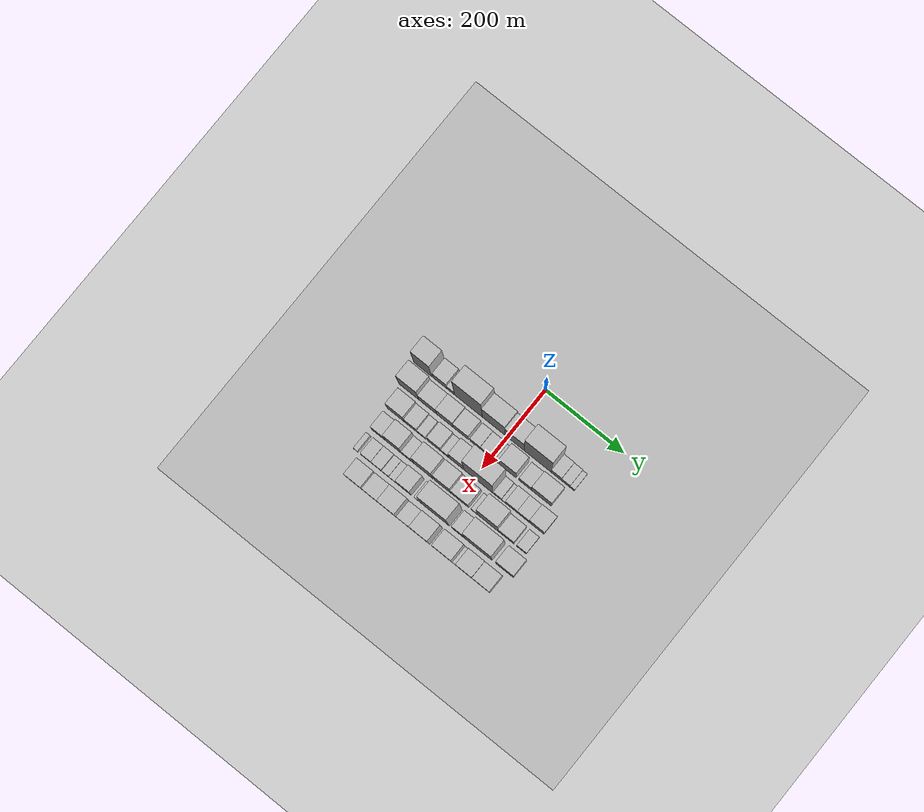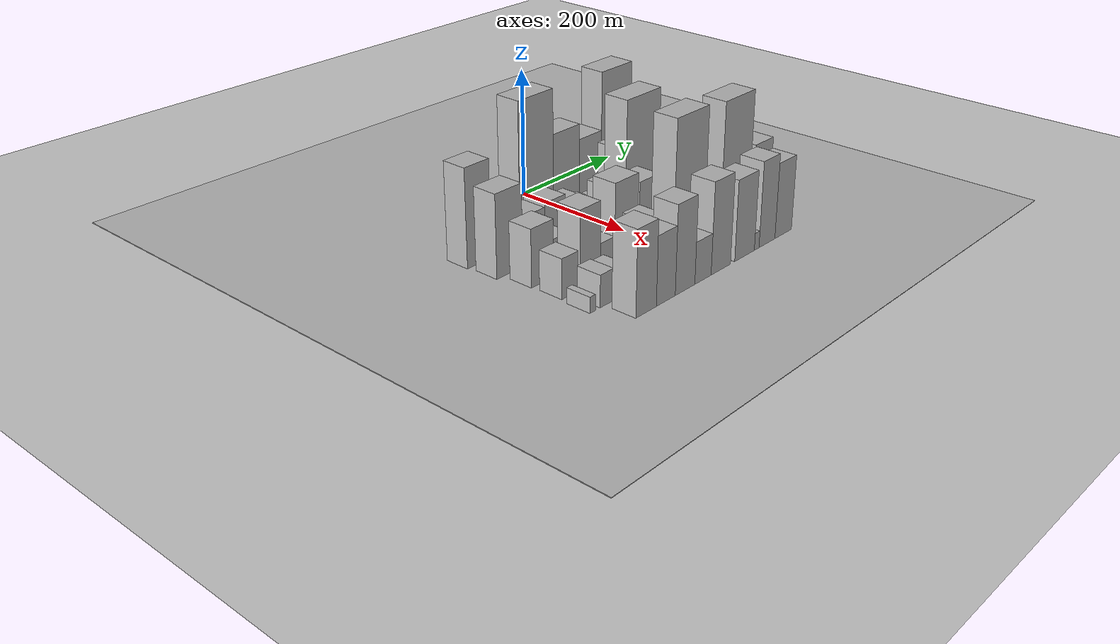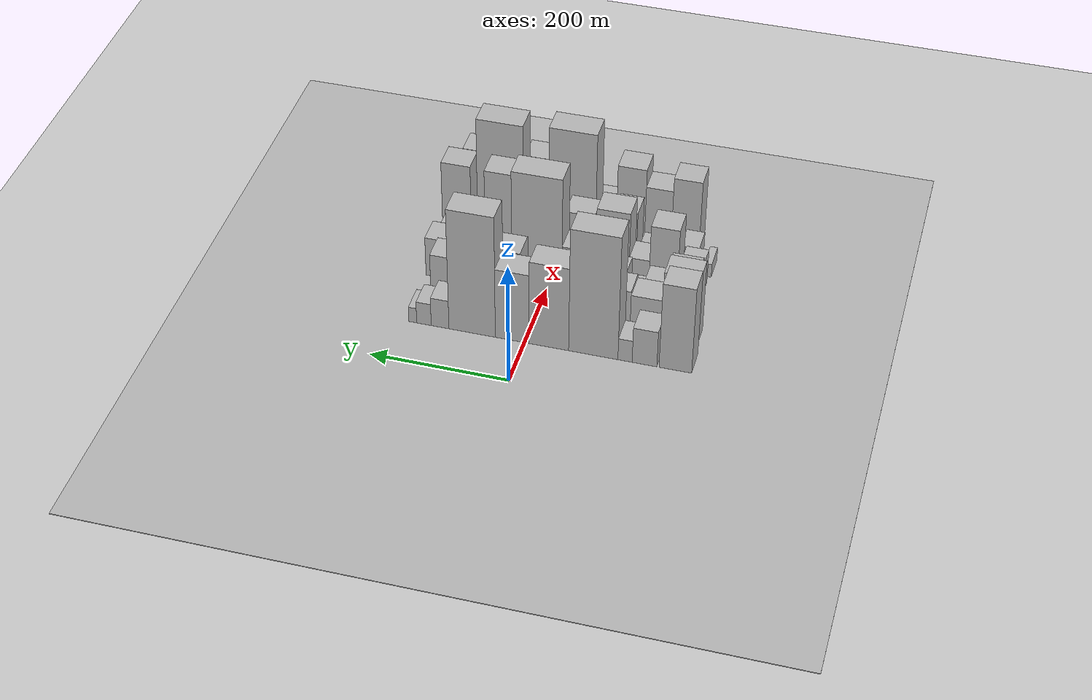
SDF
<sdf version="1.6">
 <world name="default">
  <include><name>ground_plane_1</name><uri>model://HANNAS_ground_plane</uri></include>
  <include>
   <name>ground_plane_2</name>
   <uri>model://HANNAS_ground_plane</uri>
   <pose>100 0 0  0 0 0</pose>
  </include>
  <model name="building_23">
   <static>1</static>
   <pose>100.0000 -214.9314 0 0.000000 0.000000 0.000000</pose>
   <link name="link">
    <pose>0 0 75.00 0 0 0</pose>
    <collision name="collision"><geometry><box><size>40.0000 45.9389 150.0000</size></box></geometry></collision>
    <visual name="visual">
     <cast_shadows>0</cast_shadows>
     <geometry><box><size>40.0000 45.9389 150.0000</size></box></geometry>
     <material>
      <script>
       <uri>model://HANNAS_wall/materials/scripts</uri>
       <uri>model://HANNAS_wall/materials/textures</uri>
       <name>vrc/HANNAS_wall</name>
      </script>
     </material>
    </visual>
   </link>
  </model>
  <model name="building_24">
   <static>1</static>
   <pose>100.0000 -171.4697 0 0.000000 0.000000 0.000000</pose>
   <link name="link">
    <pose>0 0 31.50 0 0 0</pose>
    <collision name="collision"><geometry><box><size>40.0000 34.9845 63.0000</size></box></geometry></collision>
    <visual name="visual">
     <cast_shadows>0</cast_shadows>
     <geometry><box><size>40.0000 34.9845 63.0000</size></box></geometry>
     <material>
      <script>
       <uri>model://HANNAS_wall/materials/scripts</uri>
       <uri>model://HANNAS_wall/materials/textures</uri>
       <name>vrc/HANNAS_wall</name>
      </script>
     </material>
    </visual>
   </link>
  </model>
  <model name="building_25">
   <static>1</static>
   <pose>100.0000 -143.8720 0 0.000000 0.000000 0.000000</pose>
   <link name="link">
    <pose>0 0 19.50 0 0 0</pose>
    <collision name="collision"><geometry><box><size>40.0000 20.2109 39.0000</size></box></geometry></collision>
    <visual name="visual">
     <cast_shadows>0</cast_shadows>
     <geometry><box><size>40.0000 20.2109 39.0000</size></box></geometry>
     <material>
      <script>
       <uri>model://HANNAS_wall/materials/scripts</uri>
       <uri>model://HANNAS_wall/materials/textures</uri>
       <name>vrc/HANNAS_wall</name>
      </script>
     </material>
    </visual>
   </link>
  </model>
  <model name="building_26">
   <static>1</static>
   <pose>100.0000 -98.5625 0 0.000000 0.000000 0.000000</pose>
   <link name="link">
    <pose>0 0 108.00 0 0 0</pose>
    <collision name="collision"><geometry><box><size>40.0000 70.4080 216.0000</size></box></geometry></collision>
    <visual name="visual">
     <cast_shadows>0</cast_shadows>
     <geometry><box><size>40.0000 70.4080 216.0000</size></box></geometry>
     <material>
      <script>
       <uri>model://HANNAS_wall/materials/scripts</uri>
       <uri>model://HANNAS_wall/materials/textures</uri>
       <name>vrc/HANNAS_wall</name>
      </script>
     </material>
    </visual>
   </link>
  </model>
  <model name="building_27">
   <static>1</static>
   <pose>100.0000 -34.9724 0 0.000000 0.000000 0.000000</pose>
   <link name="link">
    <pose>0 0 73.50 0 0 0</pose>
    <collision name="collision"><geometry><box><size>40.0000 56.7723 147.0000</size></box></geometry></collision>
    <visual name="visual">
     <cast_shadows>0</cast_shadows>
     <geometry><box><size>40.0000 56.7723 147.0000</size></box></geometry>
     <material>
      <script>
       <uri>model://HANNAS_wall/materials/scripts</uri>
       <uri>model://HANNAS_wall/materials/textures</uri>
       <name>vrc/HANNAS_wall</name>
      </script>
     </material>
    </visual>
   </link>
  </model>
  <model name="building_28">
   <static>1</static>
   <pose>100.0000 17.8575 0 0.000000 0.000000 0.000000</pose>
   <link name="link">
    <pose>0 0 61.50 0 0 0</pose>
    <collision name="collision"><geometry><box><size>40.0000 48.8873 123.0000</size></box></geometry></collision>
    <visual name="visual">
     <cast_shadows>0</cast_shadows>
     <geometry><box><size>40.0000 48.8873 123.0000</size></box></geometry>
     <material>
      <script>
       <uri>model://HANNAS_wall/materials/scripts</uri>
       <uri>model://HANNAS_wall/materials/textures</uri>
       <name>vrc/HANNAS_wall</name>
      </script>
     </material>
    </visual>
   </link>
  </model>
  <model name="building_29">
   <static>1</static>
   <pose>100.0000 76.1347 0 0.000000 0.000000 0.000000</pose>
   <link name="link">
    <pose>0 0 106.50 0 0 0</pose>
    <collision name="collision"><geometry><box><size>40.0000 67.6671 213.0000</size></box></geometry></collision>
    <visual name="visual">
     <cast_shadows>0</cast_shadows>
     <geometry><box><size>40.0000 67.6671 213.0000</size></box></geometry>
     <material>
      <script>
       <uri>model://HANNAS_wall/materials/scripts</uri>
       <uri>model://HANNAS_wall/materials/textures</uri>
       <name>vrc/HANNAS_wall</name>
      </script>
     </material>
    </visual>
   </link>
  </model>
  <model name="building_30">
   <static>1</static>
   <pose>100.0000 122.9821 0 0.000000 0.000000 0.000000</pose>
   <link name="link">
    <pose>0 0 25.50 0 0 0</pose>
    <collision name="collision"><geometry><box><size>40.0000 26.0276 51.0000</size></box></geometry></collision>
    <visual name="visual">
     <cast_shadows>0</cast_shadows>
     <geometry><box><size>40.0000 26.0276 51.0000</size></box></geometry>
     <material>
      <script>
       <uri>model://HANNAS_wall/materials/scripts</uri>
       <uri>model://HANNAS_wall/materials/textures</uri>
       <name>vrc/HANNAS_wall</name>
      </script>
     </material>
    </visual>
   </link>
  </model>
  <model name="building_31">
   <static>1</static>
   <pose>100.0000 146.6750 0 0.000000 0.000000 0.000000</pose>
   <link name="link">
    <pose>0 0 19.50 0 0 0</pose>
    <collision name="collision"><geometry><box><size>40.0000 21.3582 39.0000</size></box></geometry></collision>
    <visual name="visual">
     <cast_shadows>0</cast_shadows>
     <geometry><box><size>40.0000 21.3582 39.0000</size></box></geometry>
     <material>
      <script>
       <uri>model://HANNAS_wall/materials/scripts</uri>
       <uri>model://HANNAS_wall/materials/textures</uri>
       <name>vrc/HANNAS_wall</name>
      </script>
     </material>
    </visual>
   </link>
  </model>
  <model name="building_32">
   <static>1</static>
   <pose>100.0000 163.1563 0 0.000000 0.000000 0.000000</pose>
   <link name="link">
    <pose>0 0 13.50 0 0 0</pose>
    <collision name="collision"><geometry><box><size>40.0000 11.6044 27.0000</size></box></geometry></collision>
    <visual name="visual">
     <cast_shadows>0</cast_shadows>
     <geometry><box><size>40.0000 11.6044 27.0000</size></box></geometry>
     <material>
      <script>
       <uri>model://HANNAS_wall/materials/scripts</uri>
       <uri>model://HANNAS_wall/materials/textures</uri>
       <name>vrc/HANNAS_wall</name>
      </script>
     </material>
    </visual>
   </link>
  </model>
  <model name="building_73">
   <static>1</static>
   <pose>152.0000 -208.2137 0 0.000000 0.000000 0.000000</pose>
   <link name="link">
    <pose>0 0 63.00 0 0 0</pose>
    <collision name="collision"><geometry><box><size>40.0000 50.3991 126.0000</size></box></geometry></collision>
    <visual name="visual">
     <cast_shadows>0</cast_shadows>
     <geometry><box><size>40.0000 50.3991 126.0000</size></box></geometry>
     <material>
      <script>
       <uri>model://HANNAS_wall/materials/scripts</uri>
       <uri>model://HANNAS_wall/materials/textures</uri>
       <name>vrc/HANNAS_wall</name>
      </script>
     </material>
    </visual>
   </link>
  </model>
  <model name="building_74">
   <static>1</static>
   <pose>152.0000 -160.5492 0 0.000000 0.000000 0.000000</pose>
   <link name="link">
    <pose>0 0 37.50 0 0 0</pose>
    <collision name="collision"><geometry><box><size>40.0000 44.9298 75.0000</size></box></geometry></collision>
    <visual name="visual">
     <cast_shadows>0</cast_shadows>
     <geometry><box><size>40.0000 44.9298 75.0000</size></box></geometry>
     <material>
      <script>
       <uri>model://HANNAS_wall/materials/scripts</uri>
       <uri>model://HANNAS_wall/materials/textures</uri>
       <name>vrc/HANNAS_wall</name>
      </script>
     </material>
    </visual>
   </link>
  </model>
  <model name="building_75">
   <static>1</static>
   <pose>152.0000 -116.7100 0 0.000000 0.000000 0.000000</pose>
   <link name="link">
    <pose>0 0 40.50 0 0 0</pose>
    <collision name="collision"><geometry><box><size>40.0000 42.7485 81.0000</size></box></geometry></collision>
    <visual name="visual">
     <cast_shadows>0</cast_shadows>
     <geometry><box><size>40.0000 42.7485 81.0000</size></box></geometry>
     <material>
      <script>
       <uri>model://HANNAS_wall/materials/scripts</uri>
       <uri>model://HANNAS_wall/materials/textures</uri>
       <name>vrc/HANNAS_wall</name>
      </script>
     </material>
    </visual>
   </link>
  </model>
  <model name="building_76">
   <static>1</static>
   <pose>152.0000 -75.9170 0 0.000000 0.000000 0.000000</pose>
   <link name="link">
    <pose>0 0 33.00 0 0 0</pose>
    <collision name="collision"><geometry><box><size>40.0000 38.8376 66.0000</size></box></geometry></collision>
    <visual name="visual">
     <cast_shadows>0</cast_shadows>
     <geometry><box><size>40.0000 38.8376 66.0000</size></box></geometry>
     <material>
      <script>
       <uri>model://HANNAS_wall/materials/scripts</uri>
       <uri>model://HANNAS_wall/materials/textures</uri>
       <name>vrc/HANNAS_wall</name>
      </script>
     </material>
    </visual>
   </link>
  </model>
  <model name="building_77">
   <static>1</static>
   <pose>152.0000 -39.4412 0 0.000000 0.000000 0.000000</pose>
   <link name="link">
    <pose>0 0 25.50 0 0 0</pose>
    <collision name="collision"><geometry><box><size>40.0000 26.1140 51.0000</size></box></geometry></collision>
    <visual name="visual">
     <cast_shadows>0</cast_shadows>
     <geometry><box><size>40.0000 26.1140 51.0000</size></box></geometry>
     <material>
      <script>
       <uri>model://HANNAS_wall/materials/scripts</uri>
       <uri>model://HANNAS_wall/materials/textures</uri>
       <name>vrc/HANNAS_wall</name>
      </script>
     </material>
    </visual>
   </link>
  </model>
  <model name="building_78">
   <static>1</static>
   <pose>152.0000 -13.2603 0 0.000000 0.000000 0.000000</pose>
   <link name="link">
    <pose>0 0 22.50 0 0 0</pose>
    <collision name="collision"><geometry><box><size>40.0000 26.2477 45.0000</size></box></geometry></collision>
    <visual name="visual">
     <cast_shadows>0</cast_shadows>
     <geometry><box><size>40.0000 26.2477 45.0000</size></box></geometry>
     <material>
      <script>
       <uri>model://HANNAS_wall/materials/scripts</uri>
       <uri>model://HANNAS_wall/materials/textures</uri>
       <name>vrc/HANNAS_wall</name>
      </script>
     </material>
    </visual>
   </link>
  </model>
  <model name="building_79">
   <static>1</static>
   <pose>152.0000 15.2685 0 0.000000 0.000000 0.000000</pose>
   <link name="link">
    <pose>0 0 13.50 0 0 0</pose>
    <collision name="collision"><geometry><box><size>40.0000 10.8099 27.0000</size></box></geometry></collision>
    <visual name="visual">
     <cast_shadows>0</cast_shadows>
     <geometry><box><size>40.0000 10.8099 27.0000</size></box></geometry>
     <material>
      <script>
       <uri>model://HANNAS_wall/materials/scripts</uri>
       <uri>model://HANNAS_wall/materials/textures</uri>
       <name>vrc/HANNAS_wall</name>
      </script>
     </material>
    </visual>
   </link>
  </model>
  <model name="building_80">
   <static>1</static>
   <pose>152.0000 42.1543 0 0.000000 0.000000 0.000000</pose>
   <link name="link">
    <pose>0 0 57.00 0 0 0</pose>
    <collision name="collision"><geometry><box><size>40.0000 42.9615 114.0000</size></box></geometry></collision>
    <visual name="visual">
     <cast_shadows>0</cast_shadows>
     <geometry><box><size>40.0000 42.9615 114.0000</size></box></geometry>
     <material>
      <script>
       <uri>model://HANNAS_wall/materials/scripts</uri>
       <uri>model://HANNAS_wall/materials/textures</uri>
       <name>vrc/HANNAS_wall</name>
      </script>
     </material>
    </visual>
   </link>
  </model>
  <model name="building_81">
   <static>1</static>
   <pose>152.0000 86.3625 0 0.000000 0.000000 0.000000</pose>
   <link name="link">
    <pose>0 0 27.00 0 0 0</pose>
    <collision name="collision"><geometry><box><size>40.0000 31.4549 54.0000</size></box></geometry></collision>
    <visual name="visual">
     <cast_shadows>0</cast_shadows>
     <geometry><box><size>40.0000 31.4549 54.0000</size></box></geometry>
     <material>
      <script>
       <uri>model://HANNAS_wall/materials/scripts</uri>
       <uri>model://HANNAS_wall/materials/textures</uri>
       <name>vrc/HANNAS_wall</name>
      </script>
     </material>
    </visual>
   </link>
  </model>
  <model name="building_82">
   <static>1</static>
   <pose>152.0000 127.1451 0 0.000000 0.000000 0.000000</pose>
   <link name="link">
    <pose>0 0 42.00 0 0 0</pose>
    <collision name="collision"><geometry><box><size>40.0000 50.1102 84.0000</size></box></geometry></collision>
    <visual name="visual">
     <cast_shadows>0</cast_shadows>
     <geometry><box><size>40.0000 50.1102 84.0000</size></box></geometry>
     <material>
      <script>
       <uri>model://HANNAS_wall/materials/scripts</uri>
       <uri>model://HANNAS_wall/materials/textures</uri>
       <name>vrc/HANNAS_wall</name>
      </script>
     </material>
    </visual>
   </link>
  </model>
  <model name="building_126">
   <static>1</static>
   <pose>204.0000 -198.5189 0 0.000000 0.000000 0.000000</pose>
   <link name="link">
    <pose>0 0 43.50 0 0 0</pose>
    <collision name="collision"><geometry><box><size>40.0000 43.8971 87.0000</size></box></geometry></collision>
    <visual name="visual">
     <cast_shadows>0</cast_shadows>
     <geometry><box><size>40.0000 43.8971 87.0000</size></box></geometry>
     <material>
      <script>
       <uri>model://HANNAS_wall/materials/scripts</uri>
       <uri>model://HANNAS_wall/materials/textures</uri>
       <name>vrc/HANNAS_wall</name>
      </script>
     </material>
    </visual>
   </link>
  </model>
  <model name="building_127">
   <static>1</static>
   <pose>204.0000 -160.6050 0 0.000000 0.000000 0.000000</pose>
   <link name="link">
    <pose>0 0 28.50 0 0 0</pose>
    <collision name="collision"><geometry><box><size>40.0000 31.9307 57.0000</size></box></geometry></collision>
    <visual name="visual">
     <cast_shadows>0</cast_shadows>
     <geometry><box><size>40.0000 31.9307 57.0000</size></box></geometry>
     <material>
      <script>
       <uri>model://HANNAS_wall/materials/scripts</uri>
       <uri>model://HANNAS_wall/materials/textures</uri>
       <name>vrc/HANNAS_wall</name>
      </script>
     </material>
    </visual>
   </link>
  </model>
  <model name="building_128">
   <static>1</static>
   <pose>204.0000 -133.9610 0 0.000000 0.000000 0.000000</pose>
   <link name="link">
    <pose>0 0 18.00 0 0 0</pose>
    <collision name="collision"><geometry><box><size>40.0000 21.3572 36.0000</size></box></geometry></collision>
    <visual name="visual">
     <cast_shadows>0</cast_shadows>
     <geometry><box><size>40.0000 21.3572 36.0000</size></box></geometry>
     <material>
      <script>
       <uri>model://HANNAS_wall/materials/scripts</uri>
       <uri>model://HANNAS_wall/materials/textures</uri>
       <name>vrc/HANNAS_wall</name>
      </script>
     </material>
    </visual>
   </link>
  </model>
  <model name="building_129">
   <static>1</static>
   <pose>204.0000 -101.1856 0 0.000000 0.000000 0.000000</pose>
   <link name="link">
    <pose>0 0 33.00 0 0 0</pose>
    <collision name="collision"><geometry><box><size>40.0000 34.1937 66.0000</size></box></geometry></collision>
    <visual name="visual">
     <cast_shadows>0</cast_shadows>
     <geometry><box><size>40.0000 34.1937 66.0000</size></box></geometry>
     <material>
      <script>
       <uri>model://HANNAS_wall/materials/scripts</uri>
       <uri>model://HANNAS_wall/materials/textures</uri>
       <name>vrc/HANNAS_wall</name>
      </script>
     </material>
    </visual>
   </link>
  </model>
  <model name="building_130">
   <static>1</static>
   <pose>204.0000 -73.7079 0 0.000000 0.000000 0.000000</pose>
   <link name="link">
    <pose>0 0 19.50 0 0 0</pose>
    <collision name="collision"><geometry><box><size>40.0000 20.7618 39.0000</size></box></geometry></collision>
    <visual name="visual">
     <cast_shadows>0</cast_shadows>
     <geometry><box><size>40.0000 20.7618 39.0000</size></box></geometry>
     <material>
      <script>
       <uri>model://HANNAS_wall/materials/scripts</uri>
       <uri>model://HANNAS_wall/materials/textures</uri>
       <name>vrc/HANNAS_wall</name>
      </script>
     </material>
    </visual>
   </link>
  </model>
  <model name="building_131">
   <static>1</static>
   <pose>204.0000 -44.5607 0 0.000000 0.000000 0.000000</pose>
   <link name="link">
    <pose>0 0 48.00 0 0 0</pose>
    <collision name="collision"><geometry><box><size>40.0000 37.5326 96.0000</size></box></geometry></collision>
    <visual name="visual">
     <cast_shadows>0</cast_shadows>
     <geometry><box><size>40.0000 37.5326 96.0000</size></box></geometry>
     <material>
      <script>
       <uri>model://HANNAS_wall/materials/scripts</uri>
       <uri>model://HANNAS_wall/materials/textures</uri>
       <name>vrc/HANNAS_wall</name>
      </script>
     </material>
    </visual>
   </link>
  </model>
  <model name="building_132">
   <static>1</static>
   <pose>204.0000 11.0185 0 0.000000 0.000000 0.000000</pose>
   <link name="link">
    <pose>0 0 106.50 0 0 0</pose>
    <collision name="collision"><geometry><box><size>40.0000 73.6258 213.0000</size></box></geometry></collision>
    <visual name="visual">
     <cast_shadows>0</cast_shadows>
     <geometry><box><size>40.0000 73.6258 213.0000</size></box></geometry>
     <material>
      <script>
       <uri>model://HANNAS_wall/materials/scripts</uri>
       <uri>model://HANNAS_wall/materials/textures</uri>
       <name>vrc/HANNAS_wall</name>
      </script>
     </material>
    </visual>
   </link>
  </model>
  <model name="building_133">
   <static>1</static>
   <pose>204.0000 58.3123 0 0.000000 0.000000 0.000000</pose>
   <link name="link">
    <pose>0 0 19.50 0 0 0</pose>
    <collision name="collision"><geometry><box><size>40.0000 20.9617 39.0000</size></box></geometry></collision>
    <visual name="visual">
     <cast_shadows>0</cast_shadows>
     <geometry><box><size>40.0000 20.9617 39.0000</size></box></geometry>
     <material>
      <script>
       <uri>model://HANNAS_wall/materials/scripts</uri>
       <uri>model://HANNAS_wall/materials/textures</uri>
       <name>vrc/HANNAS_wall</name>
      </script>
     </material>
    </visual>
   </link>
  </model>
  <model name="building_134">
   <static>1</static>
   <pose>204.0000 73.5732 0 0.000000 0.000000 0.000000</pose>
   <link name="link">
    <pose>0 0 10.50 0 0 0</pose>
    <collision name="collision"><geometry><box><size>40.0000 9.5603 21.0000</size></box></geometry></collision>
    <visual name="visual">
     <cast_shadows>0</cast_shadows>
     <geometry><box><size>40.0000 9.5603 21.0000</size></box></geometry>
     <material>
      <script>
       <uri>model://HANNAS_wall/materials/scripts</uri>
       <uri>model://HANNAS_wall/materials/textures</uri>
       <name>vrc/HANNAS_wall</name>
      </script>
     </material>
    </visual>
   </link>
  </model>
  <model name="building_135">
   <static>1</static>
   <pose>204.0000 93.2756 0 0.000000 0.000000 0.000000</pose>
   <link name="link">
    <pose>0 0 27.00 0 0 0</pose>
    <collision name="collision"><geometry><box><size>40.0000 29.8445 54.0000</size></box></geometry></collision>
    <visual name="visual">
     <cast_shadows>0</cast_shadows>
     <geometry><box><size>40.0000 29.8445 54.0000</size></box></geometry>
     <material>
      <script>
       <uri>model://HANNAS_wall/materials/scripts</uri>
       <uri>model://HANNAS_wall/materials/textures</uri>
       <name>vrc/HANNAS_wall</name>
      </script>
     </material>
    </visual>
   </link>
  </model>
  <model name="building_136">
   <static>1</static>
   <pose>204.0000 123.1410 0 0.000000 0.000000 0.000000</pose>
   <link name="link">
    <pose>0 0 25.50 0 0 0</pose>
    <collision name="collision"><geometry><box><size>40.0000 29.8863 51.0000</size></box></geometry></collision>
    <visual name="visual">
     <cast_shadows>0</cast_shadows>
     <geometry><box><size>40.0000 29.8863 51.0000</size></box></geometry>
     <material>
      <script>
       <uri>model://HANNAS_wall/materials/scripts</uri>
       <uri>model://HANNAS_wall/materials/textures</uri>
       <name>vrc/HANNAS_wall</name>
      </script>
     </material>
    </visual>
   </link>
  </model>
  <model name="building_137">
   <static>1</static>
   <pose>204.0000 157.0515 0 0.000000 0.000000 0.000000</pose>
   <link name="link">
    <pose>0 0 34.50 0 0 0</pose>
    <collision name="collision"><geometry><box><size>40.0000 37.9347 69.0000</size></box></geometry></collision>
    <visual name="visual">
     <cast_shadows>0</cast_shadows>
     <geometry><box><size>40.0000 37.9347 69.0000</size></box></geometry>
     <material>
      <script>
       <uri>model://HANNAS_wall/materials/scripts</uri>
       <uri>model://HANNAS_wall/materials/textures</uri>
       <name>vrc/HANNAS_wall</name>
      </script>
     </material>
    </visual>
   </link>
  </model>
  <model name="building_180">
   <static>1</static>
   <pose>256.0000 -201.4871 0 0.000000 0.000000 0.000000</pose>
   <link name="link">
    <pose>0 0 30.00 0 0 0</pose>
    <collision name="collision"><geometry><box><size>40.0000 32.3312 60.0000</size></box></geometry></collision>
    <visual name="visual">
     <cast_shadows>0</cast_shadows>
     <geometry><box><size>40.0000 32.3312 60.0000</size></box></geometry>
     <material>
      <script>
       <uri>model://HANNAS_wall/materials/scripts</uri>
       <uri>model://HANNAS_wall/materials/textures</uri>
       <name>vrc/HANNAS_wall</name>
      </script>
     </material>
    </visual>
   </link>
  </model>
  <model name="building_181">
   <static>1</static>
   <pose>256.0000 -161.5909 0 0.000000 0.000000 0.000000</pose>
   <link name="link">
    <pose>0 0 58.50 0 0 0</pose>
    <collision name="collision"><geometry><box><size>40.0000 41.4613 117.0000</size></box></geometry></collision>
    <visual name="visual">
     <cast_shadows>0</cast_shadows>
     <geometry><box><size>40.0000 41.4613 117.0000</size></box></geometry>
     <material>
      <script>
       <uri>model://HANNAS_wall/materials/scripts</uri>
       <uri>model://HANNAS_wall/materials/textures</uri>
       <name>vrc/HANNAS_wall</name>
      </script>
     </material>
    </visual>
   </link>
  </model>
  <model name="building_182">
   <static>1</static>
   <pose>256.0000 -125.9947 0 0.000000 0.000000 0.000000</pose>
   <link name="link">
    <pose>0 0 27.00 0 0 0</pose>
    <collision name="collision"><geometry><box><size>40.0000 29.7311 54.0000</size></box></geometry></collision>
    <visual name="visual">
     <cast_shadows>0</cast_shadows>
     <geometry><box><size>40.0000 29.7311 54.0000</size></box></geometry>
     <material>
      <script>
       <uri>model://HANNAS_wall/materials/scripts</uri>
       <uri>model://HANNAS_wall/materials/textures</uri>
       <name>vrc/HANNAS_wall</name>
      </script>
     </material>
    </visual>
   </link>
  </model>
  <model name="building_183">
   <static>1</static>
   <pose>256.0000 -86.6972 0 0.000000 0.000000 0.000000</pose>
   <link name="link">
    <pose>0 0 66.00 0 0 0</pose>
    <collision name="collision"><geometry><box><size>40.0000 48.8639 132.0000</size></box></geometry></collision>
    <visual name="visual">
     <cast_shadows>0</cast_shadows>
     <geometry><box><size>40.0000 48.8639 132.0000</size></box></geometry>
     <material>
      <script>
       <uri>model://HANNAS_wall/materials/scripts</uri>
       <uri>model://HANNAS_wall/materials/textures</uri>
       <name>vrc/HANNAS_wall</name>
      </script>
     </material>
    </visual>
   </link>
  </model>
  <model name="building_184">
   <static>1</static>
   <pose>256.0000 -38.0315 0 0.000000 0.000000 0.000000</pose>
   <link name="link">
    <pose>0 0 58.50 0 0 0</pose>
    <collision name="collision"><geometry><box><size>40.0000 42.4674 117.0000</size></box></geometry></collision>
    <visual name="visual">
     <cast_shadows>0</cast_shadows>
     <geometry><box><size>40.0000 42.4674 117.0000</size></box></geometry>
     <material>
      <script>
       <uri>model://HANNAS_wall/materials/scripts</uri>
       <uri>model://HANNAS_wall/materials/textures</uri>
       <name>vrc/HANNAS_wall</name>
      </script>
     </material>
    </visual>
   </link>
  </model>
  <model name="building_185">
   <static>1</static>
   <pose>256.0000 5.6777 0 0.000000 0.000000 0.000000</pose>
   <link name="link">
    <pose>0 0 37.50 0 0 0</pose>
    <collision name="collision"><geometry><box><size>40.0000 44.9511 75.0000</size></box></geometry></collision>
    <visual name="visual">
     <cast_shadows>0</cast_shadows>
     <geometry><box><size>40.0000 44.9511 75.0000</size></box></geometry>
     <material>
      <script>
       <uri>model://HANNAS_wall/materials/scripts</uri>
       <uri>model://HANNAS_wall/materials/textures</uri>
       <name>vrc/HANNAS_wall</name>
      </script>
     </material>
    </visual>
   </link>
  </model>
  <model name="building_186">
   <static>1</static>
   <pose>256.0000 42.1831 0 0.000000 0.000000 0.000000</pose>
   <link name="link">
    <pose>0 0 15.00 0 0 0</pose>
    <collision name="collision"><geometry><box><size>40.0000 16.0595 30.0000</size></box></geometry></collision>
    <visual name="visual">
     <cast_shadows>0</cast_shadows>
     <geometry><box><size>40.0000 16.0595 30.0000</size></box></geometry>
     <material>
      <script>
       <uri>model://HANNAS_wall/materials/scripts</uri>
       <uri>model://HANNAS_wall/materials/textures</uri>
       <name>vrc/HANNAS_wall</name>
      </script>
     </material>
    </visual>
   </link>
  </model>
  <model name="building_187">
   <static>1</static>
   <pose>256.0000 76.1776 0 0.000000 0.000000 0.000000</pose>
   <link name="link">
    <pose>0 0 82.50 0 0 0</pose>
    <collision name="collision"><geometry><box><size>40.0000 51.9295 165.0000</size></box></geometry></collision>
    <visual name="visual">
     <cast_shadows>0</cast_shadows>
     <geometry><box><size>40.0000 51.9295 165.0000</size></box></geometry>
     <material>
      <script>
       <uri>model://HANNAS_wall/materials/scripts</uri>
       <uri>model://HANNAS_wall/materials/textures</uri>
       <name>vrc/HANNAS_wall</name>
      </script>
     </material>
    </visual>
   </link>
  </model>
  <model name="building_188">
   <static>1</static>
   <pose>256.0000 121.8491 0 0.000000 0.000000 0.000000</pose>
   <link name="link">
    <pose>0 0 36.00 0 0 0</pose>
    <collision name="collision"><geometry><box><size>40.0000 39.4136 72.0000</size></box></geometry></collision>
    <visual name="visual">
     <cast_shadows>0</cast_shadows>
     <geometry><box><size>40.0000 39.4136 72.0000</size></box></geometry>
     <material>
      <script>
       <uri>model://HANNAS_wall/materials/scripts</uri>
       <uri>model://HANNAS_wall/materials/textures</uri>
       <name>vrc/HANNAS_wall</name>
      </script>
     </material>
    </visual>
   </link>
  </model>
  <model name="building_189">
   <static>1</static>
   <pose>256.0000 160.9139 0 0.000000 0.000000 0.000000</pose>
   <link name="link">
    <pose>0 0 22.50 0 0 0</pose>
    <collision name="collision"><geometry><box><size>40.0000 24.7160 45.0000</size></box></geometry></collision>
    <visual name="visual">
     <cast_shadows>0</cast_shadows>
     <geometry><box><size>40.0000 24.7160 45.0000</size></box></geometry>
     <material>
      <script>
       <uri>model://HANNAS_wall/materials/scripts</uri>
       <uri>model://HANNAS_wall/materials/textures</uri>
       <name>vrc/HANNAS_wall</name>
      </script>
     </material>
    </visual>
   </link>
  </model>
  <model name="building_227">
   <static>1</static>
   <pose>308.0000 -215.9024 0 0.000000 0.000000 0.000000</pose>
   <link name="link">
    <pose>0 0 12.00 0 0 0</pose>
    <collision name="collision"><geometry><box><size>40.0000 10.8975 24.0000</size></box></geometry></collision>
    <visual name="visual">
     <cast_shadows>0</cast_shadows>
     <geometry><box><size>40.0000 10.8975 24.0000</size></box></geometry>
     <material>
      <script>
       <uri>model://HANNAS_wall/materials/scripts</uri>
       <uri>model://HANNAS_wall/materials/textures</uri>
       <name>vrc/HANNAS_wall</name>
      </script>
     </material>
    </visual>
   </link>
  </model>
  <model name="building_228">
   <static>1</static>
   <pose>308.0000 -188.1092 0 0.000000 0.000000 0.000000</pose>
   <link name="link">
    <pose>0 0 24.00 0 0 0</pose>
    <collision name="collision"><geometry><box><size>40.0000 26.6889 48.0000</size></box></geometry></collision>
    <visual name="visual">
     <cast_shadows>0</cast_shadows>
     <geometry><box><size>40.0000 26.6889 48.0000</size></box></geometry>
     <material>
      <script>
       <uri>model://HANNAS_wall/materials/scripts</uri>
       <uri>model://HANNAS_wall/materials/textures</uri>
       <name>vrc/HANNAS_wall</name>
      </script>
     </material>
    </visual>
   </link>
  </model>
  <model name="building_229">
   <static>1</static>
   <pose>308.0000 -161.7503 0 0.000000 0.000000 0.000000</pose>
   <link name="link">
    <pose>0 0 22.50 0 0 0</pose>
    <collision name="collision"><geometry><box><size>40.0000 26.0290 45.0000</size></box></geometry></collision>
    <visual name="visual">
     <cast_shadows>0</cast_shadows>
     <geometry><box><size>40.0000 26.0290 45.0000</size></box></geometry>
     <material>
      <script>
       <uri>model://HANNAS_wall/materials/scripts</uri>
       <uri>model://HANNAS_wall/materials/textures</uri>
       <name>vrc/HANNAS_wall</name>
      </script>
     </material>
    </visual>
   </link>
  </model>
  <model name="building_230">
   <static>1</static>
   <pose>308.0000 -139.7703 0 0.000000 0.000000 0.000000</pose>
   <link name="link">
    <pose>0 0 16.50 0 0 0</pose>
    <collision name="collision"><geometry><box><size>40.0000 17.9310 33.0000</size></box></geometry></collision>
    <visual name="visual">
     <cast_shadows>0</cast_shadows>
     <geometry><box><size>40.0000 17.9310 33.0000</size></box></geometry>
     <material>
      <script>
       <uri>model://HANNAS_wall/materials/scripts</uri>
       <uri>model://HANNAS_wall/materials/textures</uri>
       <name>vrc/HANNAS_wall</name>
      </script>
     </material>
    </visual>
   </link>
  </model>
  <model name="building_231">
   <static>1</static>
   <pose>308.0000 -121.9915 0 0.000000 0.000000 0.000000</pose>
   <link name="link">
    <pose>0 0 15.00 0 0 0</pose>
    <collision name="collision"><geometry><box><size>40.0000 17.6266 30.0000</size></box></geometry></collision>
    <visual name="visual">
     <cast_shadows>0</cast_shadows>
     <geometry><box><size>40.0000 17.6266 30.0000</size></box></geometry>
     <material>
      <script>
       <uri>model://HANNAS_wall/materials/scripts</uri>
       <uri>model://HANNAS_wall/materials/textures</uri>
       <name>vrc/HANNAS_wall</name>
      </script>
     </material>
    </visual>
   </link>
  </model>
  <model name="building_232">
   <static>1</static>
   <pose>308.0000 -92.7193 0 0.000000 0.000000 0.000000</pose>
   <link name="link">
    <pose>0 0 46.50 0 0 0</pose>
    <collision name="collision"><geometry><box><size>40.0000 34.9178 93.0000</size></box></geometry></collision>
    <visual name="visual">
     <cast_shadows>0</cast_shadows>
     <geometry><box><size>40.0000 34.9178 93.0000</size></box></geometry>
     <material>
      <script>
       <uri>model://HANNAS_wall/materials/scripts</uri>
       <uri>model://HANNAS_wall/materials/textures</uri>
       <name>vrc/HANNAS_wall</name>
      </script>
     </material>
    </visual>
   </link>
  </model>
  <model name="building_233">
   <static>1</static>
   <pose>308.0000 -57.9428 0 0.000000 0.000000 0.000000</pose>
   <link name="link">
    <pose>0 0 16.50 0 0 0</pose>
    <collision name="collision"><geometry><box><size>40.0000 18.6352 33.0000</size></box></geometry></collision>
    <visual name="visual">
     <cast_shadows>0</cast_shadows>
     <geometry><box><size>40.0000 18.6352 33.0000</size></box></geometry>
     <material>
      <script>
       <uri>model://HANNAS_wall/materials/scripts</uri>
       <uri>model://HANNAS_wall/materials/textures</uri>
       <name>vrc/HANNAS_wall</name>
      </script>
     </material>
    </visual>
   </link>
  </model>
  <model name="building_234">
   <static>1</static>
   <pose>308.0000 -13.6064 0 0.000000 0.000000 0.000000</pose>
   <link name="link">
    <pose>0 0 109.50 0 0 0</pose>
    <collision name="collision"><geometry><box><size>40.0000 70.0376 219.0000</size></box></geometry></collision>
    <visual name="visual">
     <cast_shadows>0</cast_shadows>
     <geometry><box><size>40.0000 70.0376 219.0000</size></box></geometry>
     <material>
      <script>
       <uri>model://HANNAS_wall/materials/scripts</uri>
       <uri>model://HANNAS_wall/materials/textures</uri>
       <name>vrc/HANNAS_wall</name>
      </script>
     </material>
    </visual>
   </link>
  </model>
  <model name="building_235">
   <static>1</static>
   <pose>308.0000 44.5381 0 0.000000 0.000000 0.000000</pose>
   <link name="link">
    <pose>0 0 48.00 0 0 0</pose>
    <collision name="collision"><geometry><box><size>40.0000 30.2513 96.0000</size></box></geometry></collision>
    <visual name="visual">
     <cast_shadows>0</cast_shadows>
     <geometry><box><size>40.0000 30.2513 96.0000</size></box></geometry>
     <material>
      <script>
       <uri>model://HANNAS_wall/materials/scripts</uri>
       <uri>model://HANNAS_wall/materials/textures</uri>
       <name>vrc/HANNAS_wall</name>
      </script>
     </material>
    </visual>
   </link>
  </model>
  <model name="building_236">
   <static>1</static>
   <pose>308.0000 94.1807 0 0.000000 0.000000 0.000000</pose>
   <link name="link">
    <pose>0 0 106.50 0 0 0</pose>
    <collision name="collision"><geometry><box><size>40.0000 69.0341 213.0000</size></box></geometry></collision>
    <visual name="visual">
     <cast_shadows>0</cast_shadows>
     <geometry><box><size>40.0000 69.0341 213.0000</size></box></geometry>
     <material>
      <script>
       <uri>model://HANNAS_wall/materials/scripts</uri>
       <uri>model://HANNAS_wall/materials/textures</uri>
       <name>vrc/HANNAS_wall</name>
      </script>
     </material>
    </visual>
   </link>
  </model>
  <model name="building_237">
   <static>1</static>
   <pose>308.0000 160.6267 0 0.000000 0.000000 0.000000</pose>
   <link name="link">
    <pose>0 0 63.00 0 0 0</pose>
    <collision name="collision"><geometry><box><size>40.0000 43.8579 126.0000</size></box></geometry></collision>
    <visual name="visual">
     <cast_shadows>0</cast_shadows>
     <geometry><box><size>40.0000 43.8579 126.0000</size></box></geometry>
     <material>
      <script>
       <uri>model://HANNAS_wall/materials/scripts</uri>
       <uri>model://HANNAS_wall/materials/textures</uri>
       <name>vrc/HANNAS_wall</name>
      </script>
     </material>
    </visual>
   </link>
  </model>
  <model name="building_280">
   <static>1</static>
   <pose>360.0000 -171.1242 0 0.000000 0.000000 0.000000</pose>
   <link name="link">
    <pose>0 0 63.00 0 0 0</pose>
    <collision name="collision"><geometry><box><size>40.0000 41.9061 126.0000</size></box></geometry></collision>
    <visual name="visual">
     <cast_shadows>0</cast_shadows>
     <geometry><box><size>40.0000 41.9061 126.0000</size></box></geometry>
     <material>
      <script>
       <uri>model://HANNAS_wall/materials/scripts</uri>
       <uri>model://HANNAS_wall/materials/textures</uri>
       <name>vrc/HANNAS_wall</name>
      </script>
     </material>
    </visual>
   </link>
  </model>
  <model name="building_281">
   <static>1</static>
   <pose>360.0000 -130.1942 0 0.000000 0.000000 0.000000</pose>
   <link name="link">
    <pose>0 0 51.00 0 0 0</pose>
    <collision name="collision"><geometry><box><size>40.0000 39.9539 102.0000</size></box></geometry></collision>
    <visual name="visual">
     <cast_shadows>0</cast_shadows>
     <geometry><box><size>40.0000 39.9539 102.0000</size></box></geometry>
     <material>
      <script>
       <uri>model://HANNAS_wall/materials/scripts</uri>
       <uri>model://HANNAS_wall/materials/textures</uri>
       <name>vrc/HANNAS_wall</name>
      </script>
     </material>
    </visual>
   </link>
  </model>
  <model name="building_282">
   <static>1</static>
   <pose>360.0000 -88.8792 0 0.000000 0.000000 0.000000</pose>
   <link name="link">
    <pose>0 0 66.00 0 0 0</pose>
    <collision name="collision"><geometry><box><size>40.0000 42.6762 132.0000</size></box></geometry></collision>
    <visual name="visual">
     <cast_shadows>0</cast_shadows>
     <geometry><box><size>40.0000 42.6762 132.0000</size></box></geometry>
     <material>
      <script>
       <uri>model://HANNAS_wall/materials/scripts</uri>
       <uri>model://HANNAS_wall/materials/textures</uri>
       <name>vrc/HANNAS_wall</name>
      </script>
     </material>
    </visual>
   </link>
  </model>
  <model name="building_283">
   <static>1</static>
   <pose>360.0000 -49.2672 0 0.000000 0.000000 0.000000</pose>
   <link name="link">
    <pose>0 0 31.50 0 0 0</pose>
    <collision name="collision"><geometry><box><size>40.0000 36.5477 63.0000</size></box></geometry></collision>
    <visual name="visual">
     <cast_shadows>0</cast_shadows>
     <geometry><box><size>40.0000 36.5477 63.0000</size></box></geometry>
     <material>
      <script>
       <uri>model://HANNAS_wall/materials/scripts</uri>
       <uri>model://HANNAS_wall/materials/textures</uri>
       <name>vrc/HANNAS_wall</name>
      </script>
     </material>
    </visual>
   </link>
  </model>
  <model name="building_284">
   <static>1</static>
   <pose>360.0000 -8.5743 0 0.000000 0.000000 0.000000</pose>
   <link name="link">
    <pose>0 0 69.00 0 0 0</pose>
    <collision name="collision"><geometry><box><size>40.0000 44.8381 138.0000</size></box></geometry></collision>
    <visual name="visual">
     <cast_shadows>0</cast_shadows>
     <geometry><box><size>40.0000 44.8381 138.0000</size></box></geometry>
     <material>
      <script>
       <uri>model://HANNAS_wall/materials/scripts</uri>
       <uri>model://HANNAS_wall/materials/textures</uri>
       <name>vrc/HANNAS_wall</name>
      </script>
     </material>
    </visual>
   </link>
  </model>
  <model name="building_285">
   <static>1</static>
   <pose>360.0000 47.5345 0 0.000000 0.000000 0.000000</pose>
   <link name="link">
    <pose>0 0 61.50 0 0 0</pose>
    <collision name="collision"><geometry><box><size>40.0000 47.3794 123.0000</size></box></geometry></collision>
    <visual name="visual">
     <cast_shadows>0</cast_shadows>
     <geometry><box><size>40.0000 47.3794 123.0000</size></box></geometry>
     <material>
      <script>
       <uri>model://HANNAS_wall/materials/scripts</uri>
       <uri>model://HANNAS_wall/materials/textures</uri>
       <name>vrc/HANNAS_wall</name>
      </script>
     </material>
    </visual>
   </link>
  </model>
  <model name="building_286">
   <static>1</static>
   <pose>360.0000 76.9356 0 0.000000 0.000000 0.000000</pose>
   <link name="link">
    <pose>0 0 13.50 0 0 0</pose>
    <collision name="collision"><geometry><box><size>40.0000 11.4230 27.0000</size></box></geometry></collision>
    <visual name="visual">
     <cast_shadows>0</cast_shadows>
     <geometry><box><size>40.0000 11.4230 27.0000</size></box></geometry>
     <material>
      <script>
       <uri>model://HANNAS_wall/materials/scripts</uri>
       <uri>model://HANNAS_wall/materials/textures</uri>
       <name>vrc/HANNAS_wall</name>
      </script>
     </material>
    </visual>
   </link>
  </model>
  <model name="building_287">
   <static>1</static>
   <pose>360.0000 102.5267 0 0.000000 0.000000 0.000000</pose>
   <link name="link">
    <pose>0 0 66.00 0 0 0</pose>
    <collision name="collision"><geometry><box><size>40.0000 39.7590 132.0000</size></box></geometry></collision>
    <visual name="visual">
     <cast_shadows>0</cast_shadows>
     <geometry><box><size>40.0000 39.7590 132.0000</size></box></geometry>
     <material>
      <script>
       <uri>model://HANNAS_wall/materials/scripts</uri>
       <uri>model://HANNAS_wall/materials/textures</uri>
       <name>vrc/HANNAS_wall</name>
      </script>
     </material>
    </visual>
   </link>
  </model>
  <model name="building_288">
   <static>1</static>
   <pose>360.0000 143.7252 0 0.000000 0.000000 0.000000</pose>
   <link name="link">
    <pose>0 0 58.50 0 0 0</pose>
    <collision name="collision"><geometry><box><size>40.0000 42.6380 117.0000</size></box></geometry></collision>
    <visual name="visual">
     <cast_shadows>0</cast_shadows>
     <geometry><box><size>40.0000 42.6380 117.0000</size></box></geometry>
     <material>
      <script>
       <uri>model://HANNAS_wall/materials/scripts</uri>
       <uri>model://HANNAS_wall/materials/textures</uri>
       <name>vrc/HANNAS_wall</name>
      </script>
     </material>
    </visual>
   </link>
  </model>
 </world>
</sdf>
